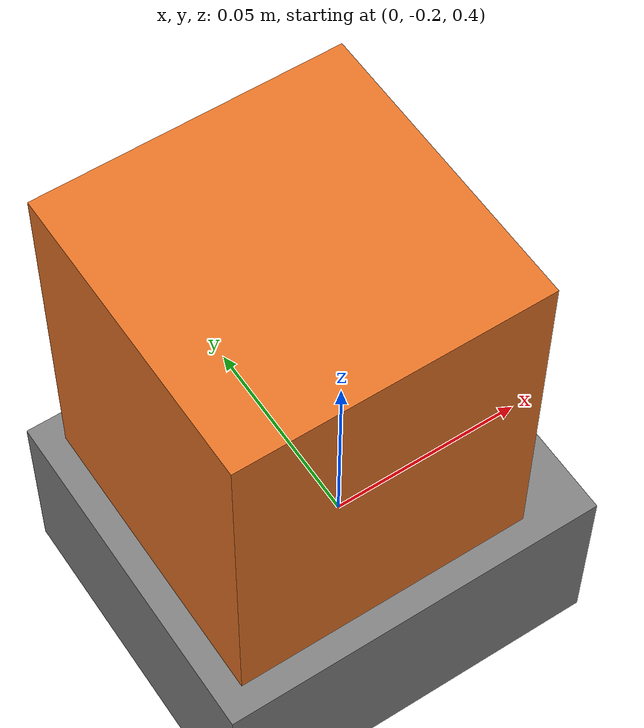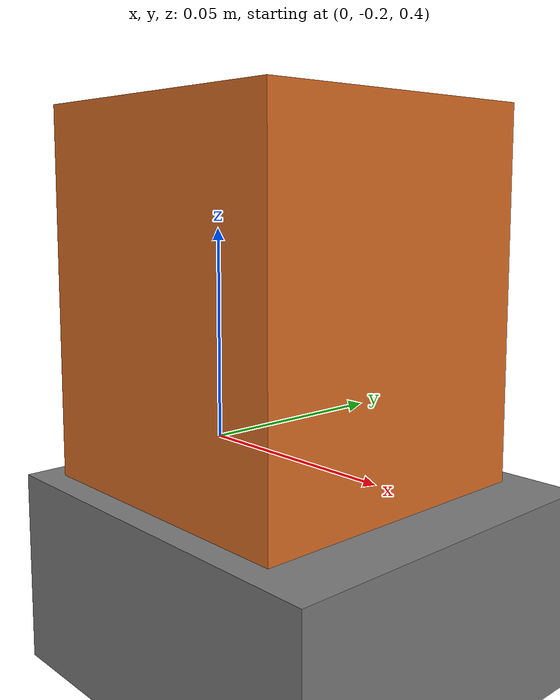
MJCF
<mujoco model="obstacle_injector_smoke"><worldbody><body name="table" pos="0 0 0.36"><geom name="table_collision" type="box" size="0.5 0.5 0.025" /></body><body name="avoidance_libero_goal_00_easy_00_0" pos="0.0000 -0.1800 0.4300"><geom name="avoidance_libero_goal_00_easy_00_0_geom" type="box" size="0.0400 0.0400 0.0500" rgba="0.9 0.45 0.15 1" contype="1" conaffinity="1" group="1" /></body></worldbody></mujoco>
